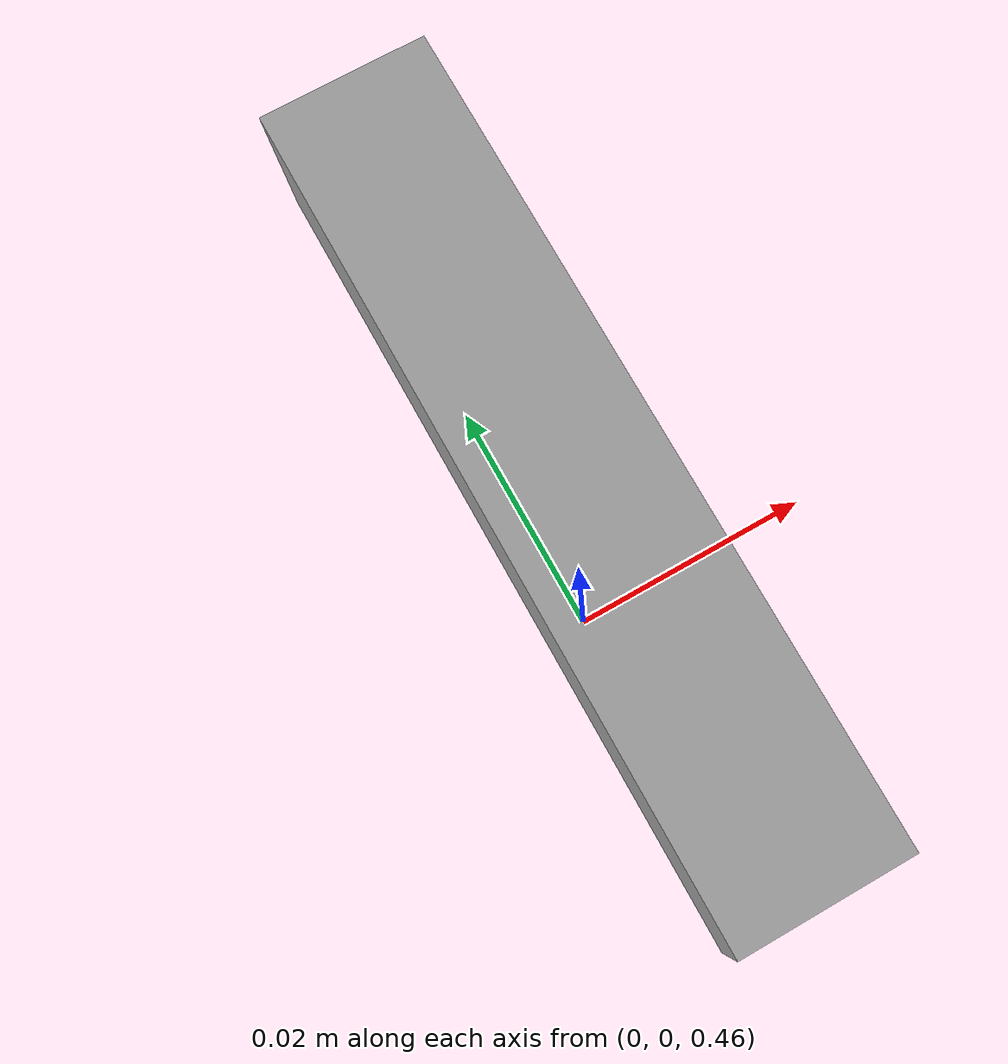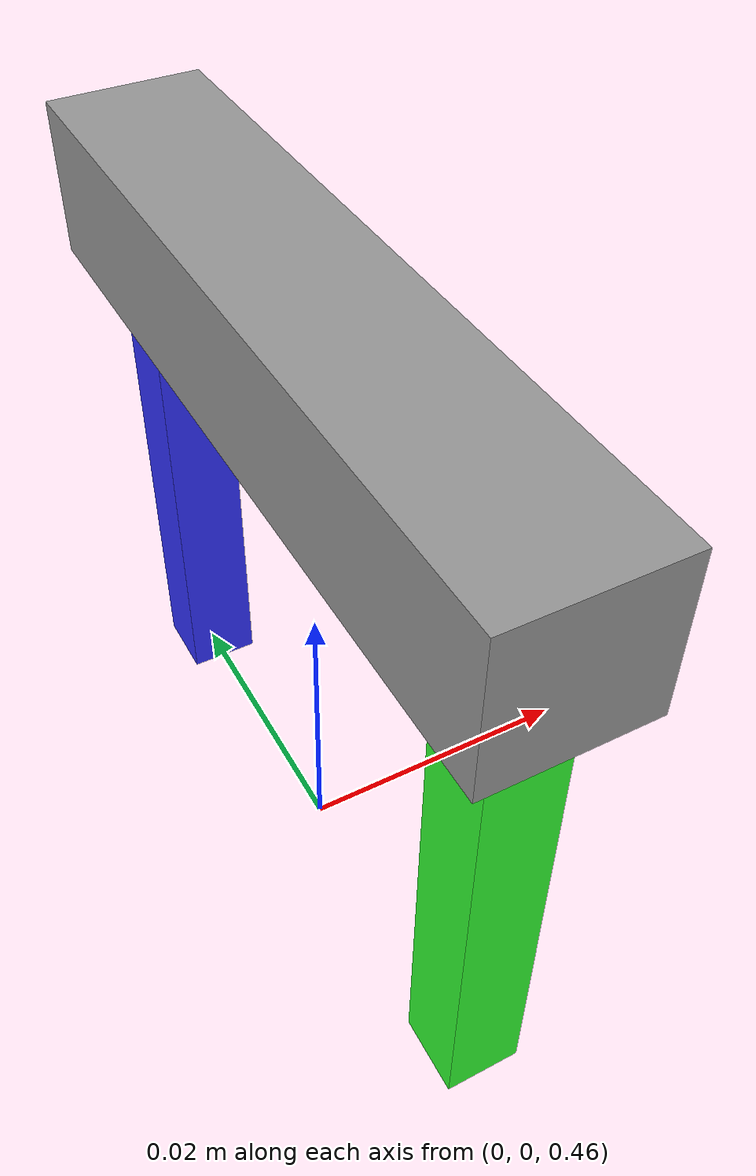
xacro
<?xml version="1.0"?>
<robot name="gripper" xmlns:xacro="http://ros.org/wiki/xacro">
  <!-- parameters -->
  <xacro:arg name="simulated" default="true" />

  <xacro:include filename="$(find custom_gripper)/urdf/gripper_macro.xacro" />

  <link name="world" />
  <!-- This will create the gripper -->
  <xacro:gripper parent="world" simulated="$(arg simulated)">
    <origin xyz="0 0 0.5" rpy="0 0 0" />
  </xacro:gripper>

  <xacro:if value="$(arg simulated)">
    <gazebo>
      <plugin filename="ign_ros2_control-system" name="ign_ros2_control::IgnitionROS2ControlPlugin">
        <robot_param>robot_description</robot_param>
        <robot_param_node>robot_state_publisher</robot_param_node>
        <parameters>$(find custom_gripper)/config/gripper_controllers.yaml</parameters>
      </plugin>
    </gazebo>
  </xacro:if>

</robot>

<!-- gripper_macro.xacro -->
<robot xmlns:xacro="http://wiki.ros.org/xacro">
  <xacro:macro name="gripper" params="parent *origin simulated:=true">

    <xacro:property name="finger_width" value="0.005" />
    <xacro:property name="finger_spacing" value="0.040" />
    <xacro:property name="finger_length" value="0.04" />
    <xacro:property name="finger_offset" value="${finger_spacing / 2}" />
    <xacro:property name="finger_range" value="${finger_offset - finger_width / 2}" />
    <xacro:property name="base_width" value="${finger_spacing + 0.01}" />
    <xacro:property name="base_height" value="0.01" />

    <xacro:include filename="$(find custom_gripper)/urdf/gripper.ros2_control.xacro" />
    <xacro:gripper_ros2_control finger_closed_position="0." simulated="${simulated}" />

    <!-- Fixed Joint connecting to parent -->
    <joint name="${parent}_to_gripper" type="fixed">
      <xacro:insert_block name="origin" />
      <parent link="${parent}" />
      <child link="gripper_base" />
    </joint>

    <!-- Basis -->
    <link name="gripper_base">
      <visual>
        <origin xyz="0 0 0" rpy="0 0 0" />
        <geometry>
          <box size="${base_height} ${base_width} ${base_height}" />
        </geometry>
        <material name="grey">
          <color rgba="0.6 0.6 0.6 1" />
        </material>
      </visual>
      <collision>
        <origin xyz="0 0 0" rpy="0 0 0" />
        <geometry>
          <box size="${base_height} ${base_width} ${base_height}" />
        </geometry>
      </collision>
      <inertial>
        <mass value="0.2" />
        <origin xyz="0 0 0" rpy="0 0 0" />
        <inertia ixx="1e-4" ixy="0" ixz="0" iyy="1e-4" iyz="0" izz="1e-4" />
      </inertial>
    </link>

    <!-- Linker Finger -->
    <link name="left_finger">
      <visual>
        <origin xyz="0 0 -${finger_length/2}" rpy="0 0 0" />
        <geometry>
          <box size="${finger_width} ${finger_width} ${finger_length}" />
        </geometry>
        <material name="blue">
          <color rgba="0.2 0.2 1 1" />
        </material>
      </visual>
      <collision>
        <origin xyz="0 0 -${finger_length/2}" rpy="0 0 0" />
        <geometry>
          <box size="${finger_width} ${finger_width} ${finger_length}" />
        </geometry>
      </collision>
      <inertial>
        <mass value="0.05" />
        <origin xyz="0 0 -${finger_length/2}" rpy="0 0 0" />
        <inertia ixx="1e-5" ixy="0" ixz="0" iyy="1e-5" iyz="0" izz="1e-5" />
      </inertial>
    </link>

    <joint name="left_finger_joint" type="prismatic">
      <parent link="gripper_base" />
      <child link="left_finger" />
      <origin xyz="0 ${finger_offset} 0" rpy="0 0 0" />
      <axis xyz="0 1 0" />
      <limit effort="5.0" velocity="0.5" lower="-${finger_range}" upper="0.0" />
    </joint>

    <!-- Rechter Finger -->
    <link name="right_finger">
      <visual>
        <origin xyz="0 0 -${finger_length/2}" rpy="0 0 0" />
        <geometry>
          <box size="${finger_width} ${finger_width} ${finger_length}" />
        </geometry>
        <material name="green">
          <color rgba="0.2 1 0.2 1" />
        </material>
      </visual>
      <collision>
        <origin xyz="0 0 -${finger_length/2}" rpy="0 0 0" />
        <geometry>
          <box size="${finger_width} ${finger_width} ${finger_length}" />
        </geometry>
      </collision>
      <inertial>
        <mass value="0.05" />
        <origin xyz="0 0 -${finger_length/2}" rpy="0 0 0" />
        <inertia ixx="1e-5" ixy="0" ixz="0" iyy="1e-5" iyz="0" izz="1e-5" />
      </inertial>
    </link>

    <joint name="right_finger_joint" type="prismatic">
      <parent link="gripper_base" />
      <child link="right_finger" />
      <origin xyz="0 -${finger_offset} 0" rpy="0 0 0" />
      <axis xyz="0 1 0" />
      <!-- IMPORTANT do not set a slow speed here otherwise  -->
      <!-- the dart simulator will block the joint at the limit -->
      <!-- see info on this bug   -->
      <!-- https://github.com/gazebosim/gz-sim/issues/2785#issuecomment-2672110918 -->
      <limit effort="5.0" velocity="0.5" lower="0.0" upper="${finger_range}" />
      <mimic joint="left_finger_joint" multiplier="-1" />
    </joint>
  </xacro:macro>
</robot>
